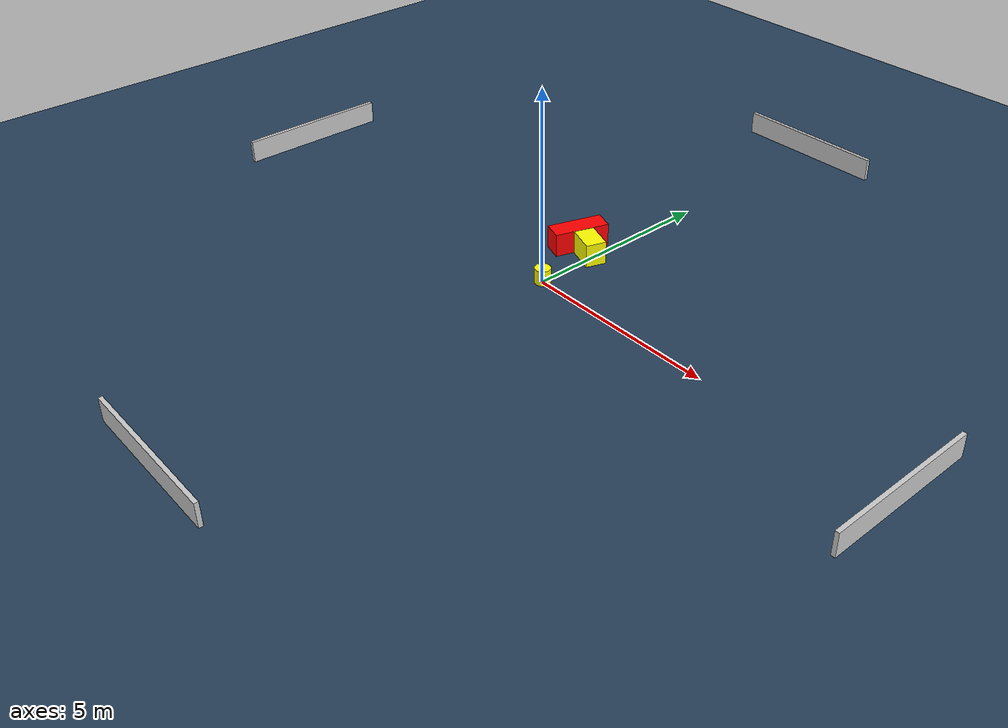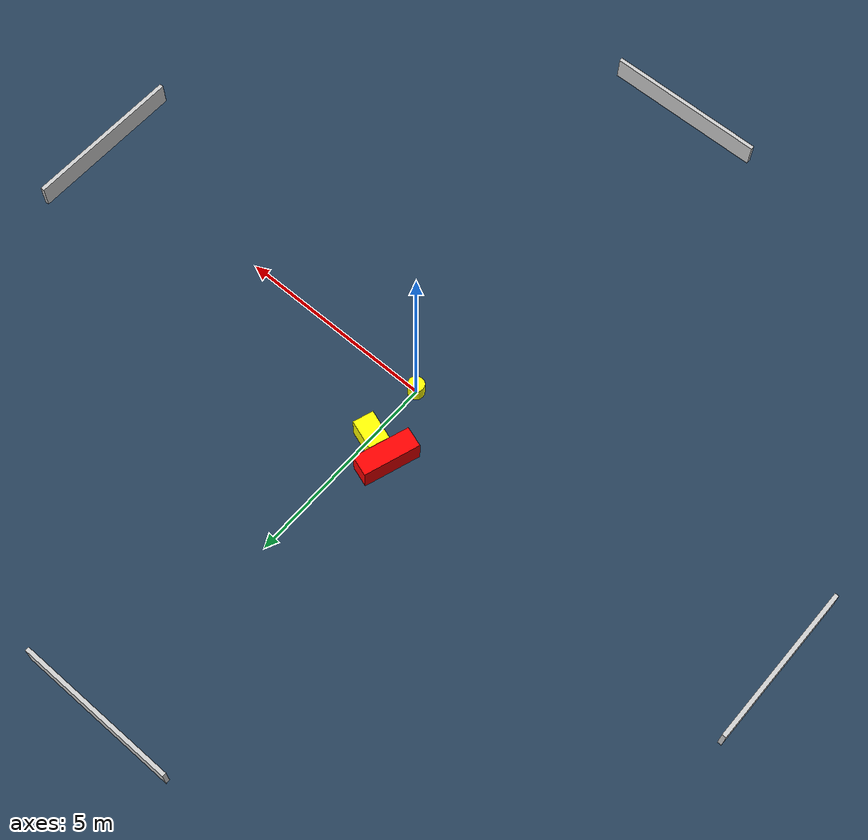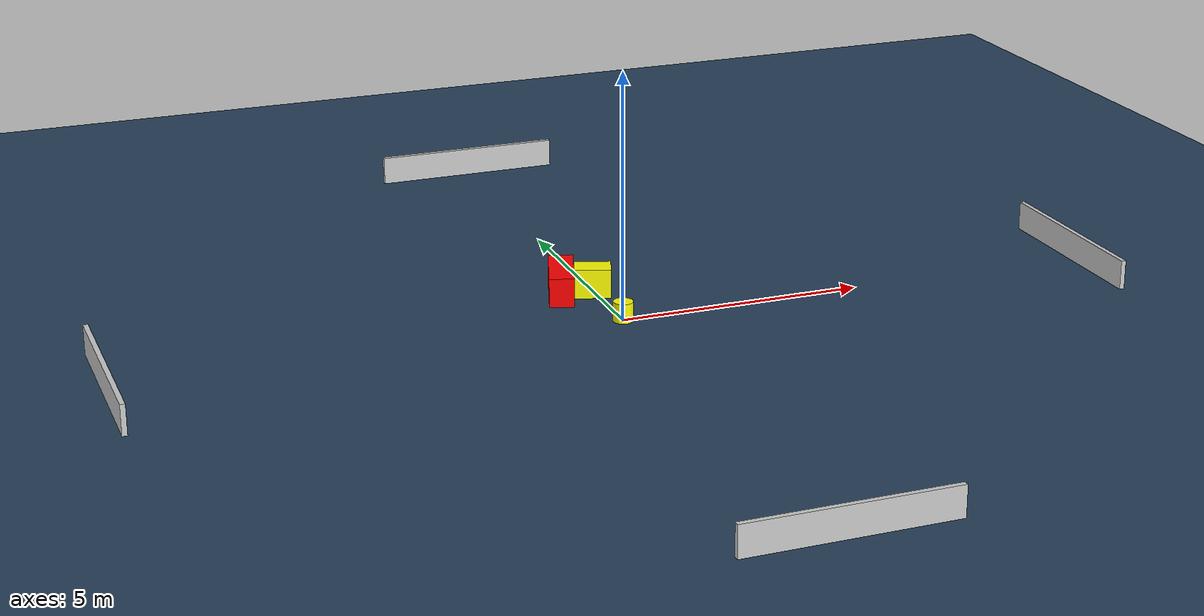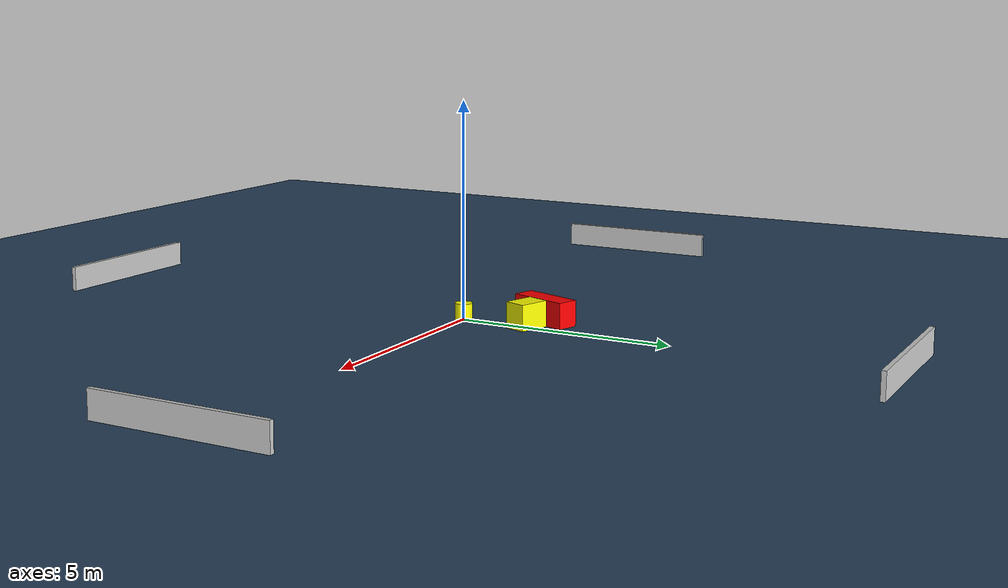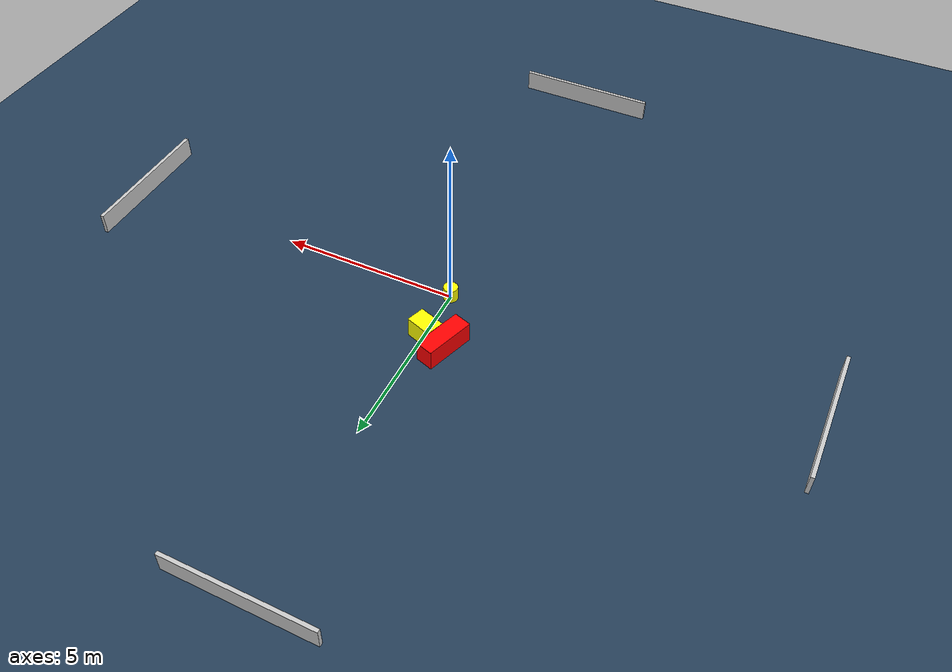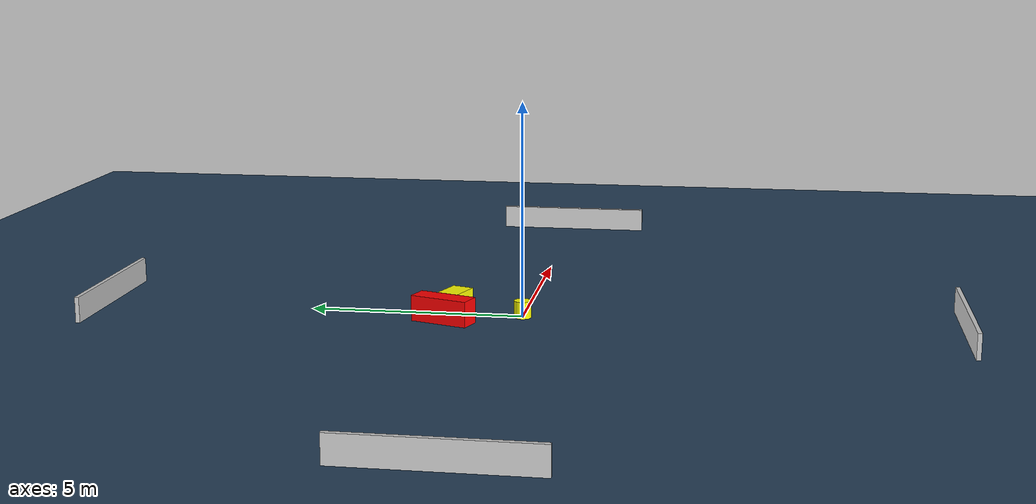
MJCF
<?xml version="1.0" ?>
<mujoco model="generated_environment">
  <option timestep="0.01" integrator="RK4" cone="elliptic"/>
  <default>
    <geom density="1"/>
  </default>
  <asset>
    <texture builtin="gradient" height="3072" name="skybox" rgb1="0.3 0.5 0.7" rgb2="0 0 0" type="skybox" width="512"/>
    <texture builtin="checker" height="300" name="groundplane" rgb1="0.2 0.3 0.4" rgb2="0.1 0.2 0.3" type="2d" width="300"/>
    <material name="groundplane" reflectance="0.2" texrepeat="5 5" texture="groundplane"/>
  </asset>
  <worldbody>
    <light dir="0 0 -1" directional="true" pos="0 0 1.5"/>
    <geom condim="3" friction="0.5 0.005 0.001" material="groundplane" name="floor" pos="0 0 0" size="0 0 0.05" type="plane"/>
    <body name="walls">
      <geom name="wall_1" condim="4" pos="-10.0 0.0 0.3" rgba="0.800000011920929 0.800000011920929 0.800000011920929 1.0" size="0.05 2.0 0.3" type="box"/>
      <geom name="wall_2" condim="4" pos="10.0 0.0 0.3" rgba="0.800000011920929 0.800000011920929 0.800000011920929 1.0" size="0.05 2.0 0.3" type="box"/>
      <geom name="wall_3" condim="4" pos="0.0 -10.0 0.3" rgba="0.800000011920929 0.800000011920929 0.800000011920929 1.0" size="2.0 0.05 0.3" type="box"/>
      <geom name="wall_4" condim="4" pos="0.0 10.0 0.3" rgba="0.800000011920929 0.800000011920929 0.800000011920929 1.0" size="2.0 0.05 0.3" type="box"/>
    </body>
    <body name="robot">
      <joint name="joint_x" type="slide" pos="0 0 0" axis="1 0 0"/>
      <joint name="joint_y" type="slide" pos="0 0 0" axis="0 1 0"/>
      <geom name="robot" type="cylinder" pos="0.0 0.0 0.2" size="0.2 0.2 0.0" mass="5.0" friction="1.0 0.005 0.0001" condim="4" rgba="1.0 1.0 0.0 1.0"/>
    </body>
    <body name="obstacle_1_movable">
      <geom name="obstacle_1_movable" condim="4" pos="-0.04844558611407347 1.57380455204693 0.3" euler="0 0 70.97816099929838" friction="0.0 0.005 0.001" rgba="1.0 1.0 0.0 1.0" size="0.2577383183709869 0.36868853969824444 0.3" type="box" mass="0.1"/>
      <joint type="free"/>
    </body>
    <body name="obstacle_2_static">
      <geom name="obstacle_2_static" condim="4" pos="-0.6541368201355219 1.7436057432730028 0.3" euler="0 0 161.5954539654988" friction="0.0 0.005 0.001" rgba="1.0 0.0 0.0 1.0" size="0.2524065383147319 0.7025343073696648 0.3" type="box"/>
    </body>
  </worldbody>
  <actuator>
    <motor name="actuator_x" joint="joint_x" gear="1" ctrlrange="-1 1"/>
    <motor name="actuator_y" joint="joint_y" gear="1" ctrlrange="-1 1"/>
  </actuator>
</mujoco>
